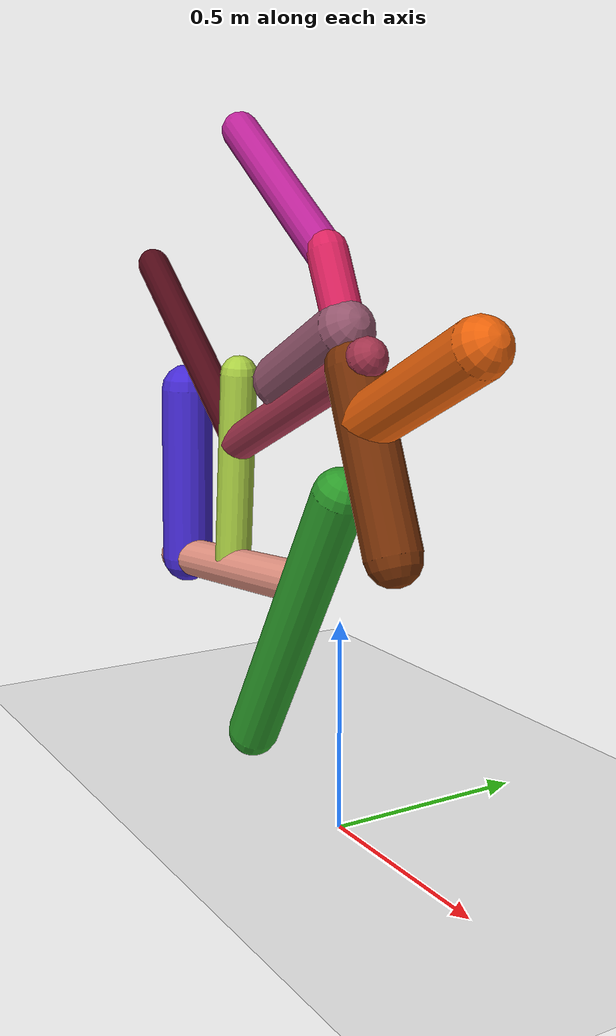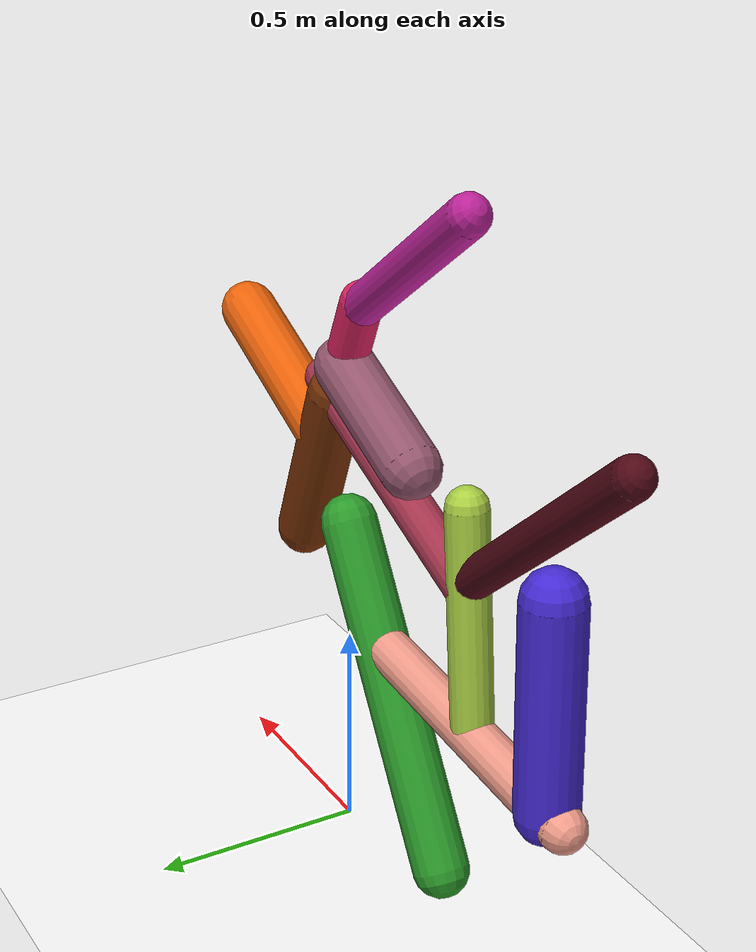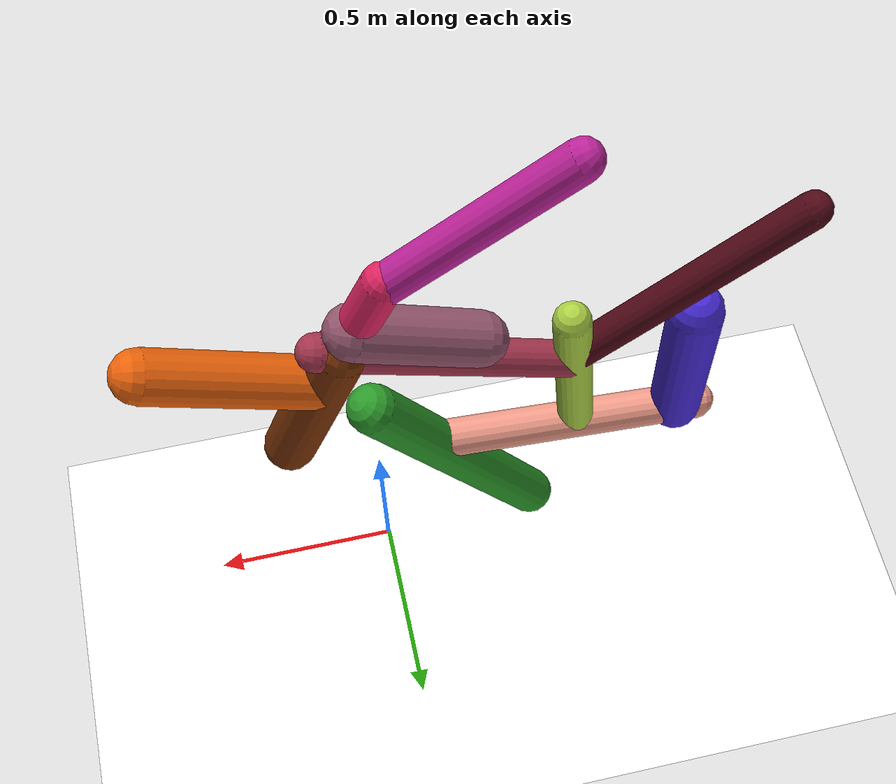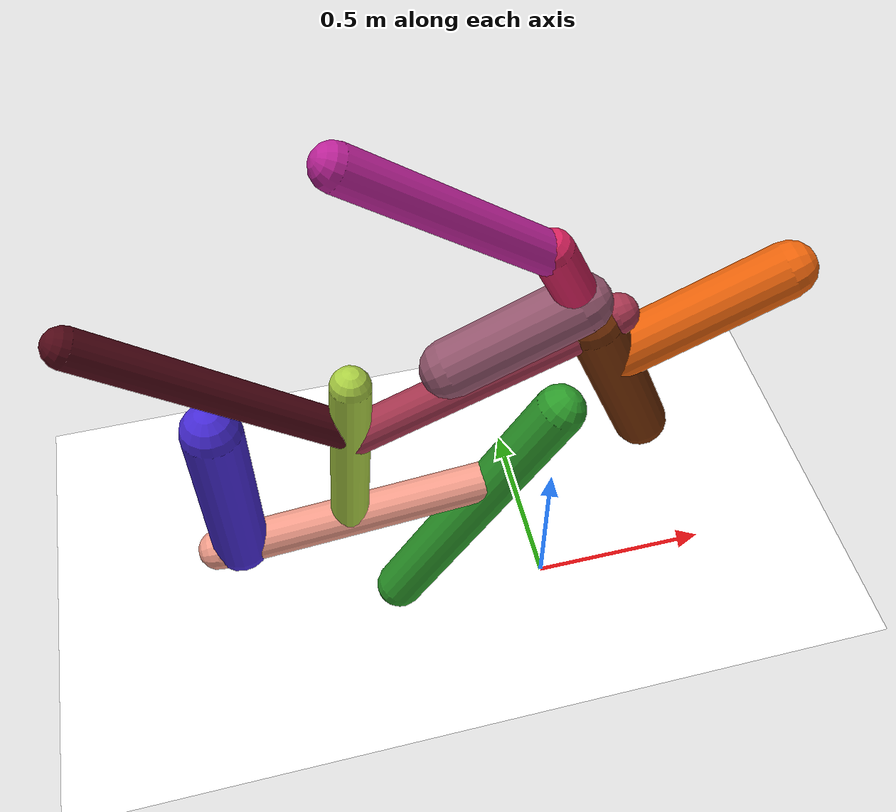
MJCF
<mujoco model="morphology">
  <option timestep="0.01"/>
  <default>
    <default class="/"/>
    <default class="0/"/>
    <default class="0/1/"/>
    <default class="0/1/2/"/>
    <default class="0/1/3/"/>
    <default class="0/1/3/4/"/>
    <default class="0/1/3/5/"/>
    <default class="0/1/3/5/6/"/>
    <default class="0/1/3/5/6/7/"/>
    <default class="0/1/3/5/6/7/8/"/>
    <default class="0/1/3/5/6/7/9/"/>
    <default class="0/1/3/5/6/10/"/>
  </default>
  <asset>
    <texture name="texplane" type="2d" builtin="checker" rgb1="0.10000000000000001 0.20000000000000001 0.29999999999999999" rgb2="0.20000000000000001 0.29999999999999999 0.40000000000000002" width="300" height="300"/>
    <material name="MatPlane" class="/" texture="texplane" texrepeat="20 20" specular="1" shininess="1" reflectance="0.5"/>
  </asset>
  <worldbody>
    <light name="//unnamed_light_0" class="/" directional="true" pos="0 0 1.5" dir="0 0 -1.3" cutoff="100" exponent="1" diffuse="1 1 1" specular="0.10000000000000001 0.10000000000000001 0.10000000000000001"/>
    <geom name="ground" class="/" type="plane" size="15 15 0.5" material="MatPlane" rgba="1 1 1 1"/>
    <site name="body" class="/" size="9.9999999999999995e-07 9.9999999999999995e-07 9.9999999999999995e-07" pos="0 0 0.79269996881484983"/>
    <body pos="0 0 0.79269996881484983" name="0/">
      <joint name="0/rootx/" class="/" type="slide" axis="1 0 0" limited="false" stiffness="0" armature="0" damping="0"/>
      <joint name="0/rootz/" class="/" type="slide" axis="0 0 1" limited="false" stiffness="0" armature="0" damping="0"/>
      <joint name="0/rooty/" class="/" type="hinge" axis="0 1 0" limited="false" stiffness="0" armature="0" damping="0"/>
      <geom name="0/geom" class="0/" type="capsule" contype="1" conaffinity="1" condim="3" size="0.065852721539210166" rgba="0.17300227570386528 0.60816767963989393 0.16522307025105076 1" friction="0.59999999999999998 0.10000000000000001 0.10000000000000001" fromto="0 0 0 -0.4293877890555764 0 -0.69269994887305653"/>
      <site name="0/end0" class="0/" size="0.0050000000000000001" pos="-0.4293877890555764 0 -0.69269994887305653"/>
      <site name="0/attach1" class="0/" size="9.9999999999999995e-07 9.9999999999999995e-07 9.9999999999999995e-07" pos="-0.14761902886857875 0 -0.23814299417983595"/>
      <body pos="-0.14761902886857875 0 -0.23814299417983595" name="0/1/">
        <joint name="0/1/joint/" class="0/" type="hinge" axis="0 1 0" limited="true" range="-41.498053074616074 41.498053074616074"/>
        <geom name="0/1/geom" class="0/1/" type="capsule" contype="1" conaffinity="1" condim="3" size="0.051736418225767723" rgba="0.94114157662543729 0.61083763915570977 0.53831968944455899 1" friction="0.59999999999999998 0.10000000000000001 0.10000000000000001" fromto="0 0 0 -0.72949560567942218 0 -0.068115769890737532"/>
        <site name="0/1/end1" class="0/1/" size="0.0050000000000000001" pos="-0.72949560567942218 0 -0.068115769890737532"/>
        <site name="0/1/attach2" class="0/1/" size="9.9999999999999995e-07 9.9999999999999995e-07 9.9999999999999995e-07" pos="-0.67277313625822133 0 -0.062819377911610491"/>
        <body pos="-0.67277313625822133 0 -0.062819377911610491" name="0/1/2/">
          <joint name="0/1/2/joint/" class="0/1/" type="hinge" axis="0 1 0" limited="true" range="-49.757125480166188 49.757125480166188"/>
          <geom name="0/1/2/geom" class="0/1/2/" type="capsule" contype="1" conaffinity="1" condim="3" size="0.069908446744417721" rgba="0.27206451437775203 0.16352018142326885 0.83176045424583012 1" friction="0.59999999999999998 0.10000000000000001 0.10000000000000001" fromto="0 0 0 0.014382623050227972 0 0.47385529837588969"/>
          <site name="0/1/2/end2" class="0/1/2/" size="0.0050000000000000001" pos="0.014382623050227972 0 0.47385529837588969"/>
        </body>
        <site name="0/1/attach3" class="0/1/" size="9.9999999999999995e-07 9.9999999999999995e-07 9.9999999999999995e-07" pos="-0.39166404797909826 0 -0.036571156781365098"/>
        <body pos="-0.39166404797909826 0 -0.036571156781365098" name="0/1/3/">
          <geom name="0/1/3/geom" class="0/1/3/" type="capsule" contype="1" conaffinity="1" condim="3" size="0.047709617984838651" rgba="0.66927803455902402 0.81276227240535026 0.26179715327679176 1" friction="0.59999999999999998 0.10000000000000001 0.10000000000000001" fromto="0 0 0 0.047120222301614278 0 0.51340794958067648"/>
          <site name="0/1/3/end3" class="0/1/3/" size="0.0050000000000000001" pos="0.047120222301614278 0 0.51340794958067648"/>
          <site name="0/1/3/attach4" class="0/1/3/" size="9.9999999999999995e-07 9.9999999999999995e-07 9.9999999999999995e-07" pos="0.032254533877612582 0 0.35143582296338671"/>
          <body pos="0.032254533877612582 0 0.35143582296338671" name="0/1/3/4/">
            <joint name="0/1/3/4/joint/" class="0/1/3/" type="hinge" axis="0 1 0" limited="true" range="-37.404425718944225 37.404425718944225"/>
            <geom name="0/1/3/4/geom" class="0/1/3/4/" type="capsule" contype="1" conaffinity="1" condim="3" size="0.044015698402650953" rgba="0.30859447602746393 0.031408310848873522 0.084392438354868204 1" friction="0.59999999999999998 0.10000000000000001 0.10000000000000001" fromto="0 0 0 -0.51051107350996638 0 0.4368541068939702"/>
            <site name="0/1/3/4/end4" class="0/1/3/4/" size="0.0050000000000000001" pos="-0.51051107350996638 0 0.4368541068939702"/>
          </body>
          <site name="0/1/3/attach5" class="0/1/3/" size="9.9999999999999995e-07 9.9999999999999995e-07 9.9999999999999995e-07" pos="0.030256776626793578 0 0.32966885320382816"/>
          <body pos="0.030256776626793578 0 0.32966885320382816" name="0/1/3/5/">
            <geom name="0/1/3/5/geom" class="0/1/3/5/" type="capsule" contype="1" conaffinity="1" condim="3" size="0.047104000343540245" rgba="0.63949439937223718 0.20457091598495636 0.30308897109690114 1" friction="0.59999999999999998 0.10000000000000001 0.10000000000000001" fromto="0 0 0 0.61859365038168046 0 0.26181364317791367"/>
            <site name="0/1/3/5/end5" class="0/1/3/5/" size="0.0050000000000000001" pos="0.61859365038168046 0 0.26181364317791367"/>
            <site name="0/1/3/5/attach6" class="0/1/3/5/" size="9.9999999999999995e-07 9.9999999999999995e-07 9.9999999999999995e-07" pos="0.56645285669613232 0 0.23974556804558997"/>
            <body pos="0.56645285669613232 0 0.23974556804558997" name="0/1/3/5/6/">
              <joint name="0/1/3/5/6/joint/" class="0/1/3/5/" type="hinge" axis="0 1 0" limited="true" range="-52.934655130659515 52.934655130659515"/>
              <geom name="0/1/3/5/6/geom" class="0/1/3/5/6/" type="capsule" contype="1" conaffinity="1" condim="3" size="0.066417448139902441" rgba="0.46957180316665859 0.19065002424617672 0.023784798071583402 1" friction="0.59999999999999998 0.10000000000000001 0.10000000000000001" fromto="0 0 0 0.15941426008737569 0 -0.39542843030991021"/>
              <site name="0/1/3/5/6/end6" class="0/1/3/5/6/" size="0.0050000000000000001" pos="0.15941426008737569 0 -0.39542843030991021"/>
              <site name="0/1/3/5/6/attach7" class="0/1/3/5/6/" size="9.9999999999999995e-07 9.9999999999999995e-07 9.9999999999999995e-07" pos="0.0067231340623121185 0 -0.016676791320713875"/>
              <body pos="0.0067231340623121185 0 -0.016676791320713875" name="0/1/3/5/6/7/">
                <joint name="0/1/3/5/6/7/joint/" class="0/1/3/5/6/" type="hinge" axis="0 1 0" limited="true" range="-32.943091913993953 32.943091913993953"/>
                <geom name="0/1/3/5/6/7/geom" class="0/1/3/5/6/7/" type="capsule" contype="1" conaffinity="1" condim="3" size="0.048012710143957485" rgba="0.85866444347014237 0.13339178021362574 0.37485505329540092 1" friction="0.59999999999999998 0.10000000000000001 0.10000000000000001" fromto="0 0 0 -0.12092520287857678 0 0.26525181170224821"/>
                <site name="0/1/3/5/6/7/end7" class="0/1/3/5/6/7/" size="0.0050000000000000001" pos="-0.12092520287857678 0 0.26525181170224821"/>
                <site name="0/1/3/5/6/7/attach8" class="0/1/3/5/6/7/" size="9.9999999999999995e-07 9.9999999999999995e-07 9.9999999999999995e-07" pos="-0.11450690573384262 0 0.25117315063608836"/>
                <body pos="-0.11450690573384262 0 0.25117315063608836" name="0/1/3/5/6/7/8/">
                  <joint name="0/1/3/5/6/7/8/joint/" class="0/1/3/5/6/7/" type="hinge" axis="0 1 0" limited="true" range="-45.557056542766858 45.557056542766858"/>
                  <geom name="0/1/3/5/6/7/8/geom" class="0/1/3/5/6/7/8/" type="capsule" contype="1" conaffinity="1" condim="3" size="0.046620164158691767" rgba="0.733091856180351 0.13185461198835347 0.59348829689186655 1" friction="0.59999999999999998 0.10000000000000001 0.10000000000000001" fromto="0 0 0 -0.4177617233191499 0 0.30799598027856812"/>
                  <site name="0/1/3/5/6/7/8/end8" class="0/1/3/5/6/7/8/" size="0.0050000000000000001" pos="-0.4177617233191499 0 0.30799598027856812"/>
                </body>
                <site name="0/1/3/5/6/7/attach9" class="0/1/3/5/6/7/" size="9.9999999999999995e-07 9.9999999999999995e-07 9.9999999999999995e-07" pos="-0.043104776677082304 0 0.094551175722215691"/>
                <body pos="-0.043104776677082304 0 0.094551175722215691" name="0/1/3/5/6/7/9/">
                  <geom name="0/1/3/5/6/7/9/geom" class="0/1/3/5/6/7/9/" type="capsule" contype="1" conaffinity="1" condim="3" size="0.068507893624874777" rgba="0.57990164860599347 0.33670791627494301 0.4288718225785112 1" friction="0.59999999999999998 0.10000000000000001 0.10000000000000001" fromto="0 0 0 -0.29216753064530138 0 -0.13413519155536935"/>
                  <site name="0/1/3/5/6/7/9/end9" class="0/1/3/5/6/7/9/" size="0.0050000000000000001" pos="-0.29216753064530138 0 -0.13413519155536935"/>
                </body>
              </body>
              <site name="0/1/3/5/6/attach10" class="0/1/3/5/6/" size="9.9999999999999995e-07 9.9999999999999995e-07 9.9999999999999995e-07" pos="0.048039177503240861 0 -0.1191615890766225"/>
              <body pos="0.048039177503240861 0 -0.1191615890766225" name="0/1/3/5/6/10/">
                <joint name="0/1/3/5/6/10/joint/" class="0/1/3/5/6/" type="hinge" axis="0 1 0" limited="true" range="-44.958525030704379 44.958525030704379"/>
                <geom name="0/1/3/5/6/10/geom" class="0/1/3/5/6/10/" type="capsule" contype="1" conaffinity="1" condim="3" size="0.065648441671625979" rgba="0.91412171997053338 0.38425084662483755 0.040393840551264937 1" friction="0.59999999999999998 0.10000000000000001 0.10000000000000001" fromto="0 0 0 0.3949867561143694 0 0.1833801049594741"/>
                <site name="0/1/3/5/6/10/end10" class="0/1/3/5/6/10/" size="0.0050000000000000001" pos="0.3949867561143694 0 0.1833801049594741"/>
              </body>
            </body>
          </body>
        </body>
      </body>
      <camera name="0/side" class="0/" mode="trackcom" pos="0.40000000000000002 -4 0.20000000000000001" quat="0.70699999999999996 0.70699999999999996 0 0"/>
    </body>
  </worldbody>
  <actuator>
    <motor name="0/1/motor" class="0/1/" ctrllimited="true" ctrlrange="-1 1" gear="76" joint="0/1/joint/"/>
    <motor name="0/1/2/motor" class="0/1/2/" ctrllimited="true" ctrlrange="-1 1" gear="87" joint="0/1/2/joint/"/>
    <motor name="0/1/3/4/motor" class="0/1/3/4/" ctrllimited="true" ctrlrange="-1 1" gear="60" joint="0/1/3/4/joint/"/>
    <motor name="0/1/3/5/6/motor" class="0/1/3/5/6/" ctrllimited="true" ctrlrange="-1 1" gear="67" joint="0/1/3/5/6/joint/"/>
    <motor name="0/1/3/5/6/7/motor" class="0/1/3/5/6/7/" ctrllimited="true" ctrlrange="-1 1" gear="73" joint="0/1/3/5/6/7/joint/"/>
    <motor name="0/1/3/5/6/7/8/motor" class="0/1/3/5/6/7/8/" ctrllimited="true" ctrlrange="-1 1" gear="57" joint="0/1/3/5/6/7/8/joint/"/>
    <motor name="0/1/3/5/6/10/motor" class="0/1/3/5/6/10/" ctrllimited="true" ctrlrange="-1 1" gear="86" joint="0/1/3/5/6/10/joint/"/>
  </actuator>
  <sensor>
    <subtreelinvel name="velocity" body="0/"/>
  </sensor>
</mujoco>
